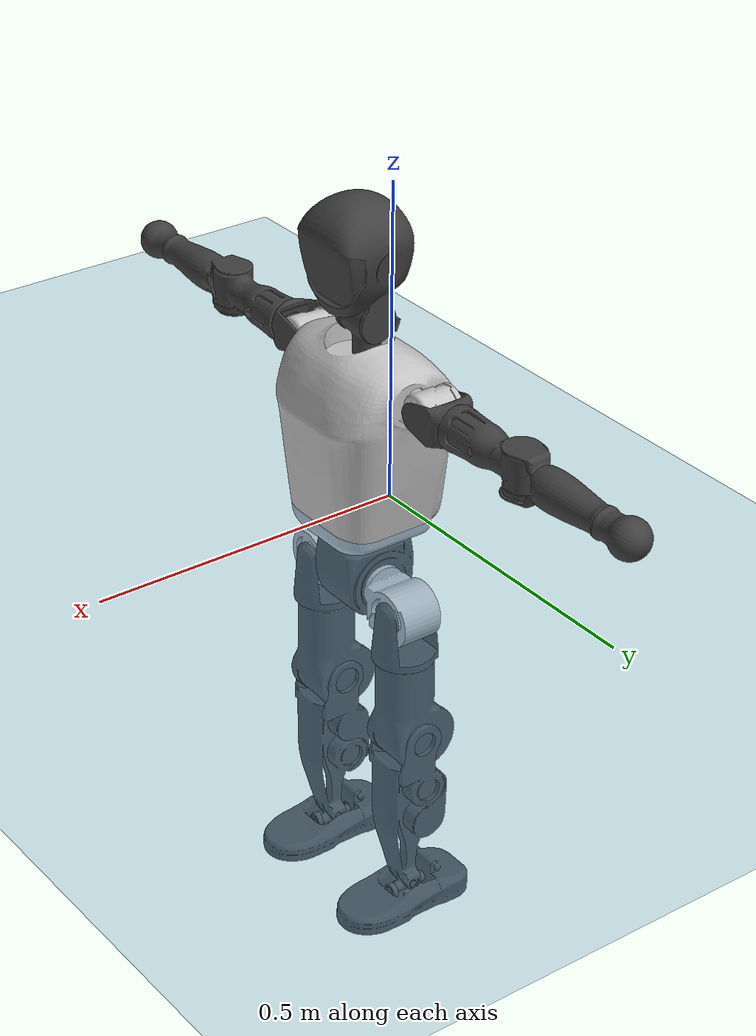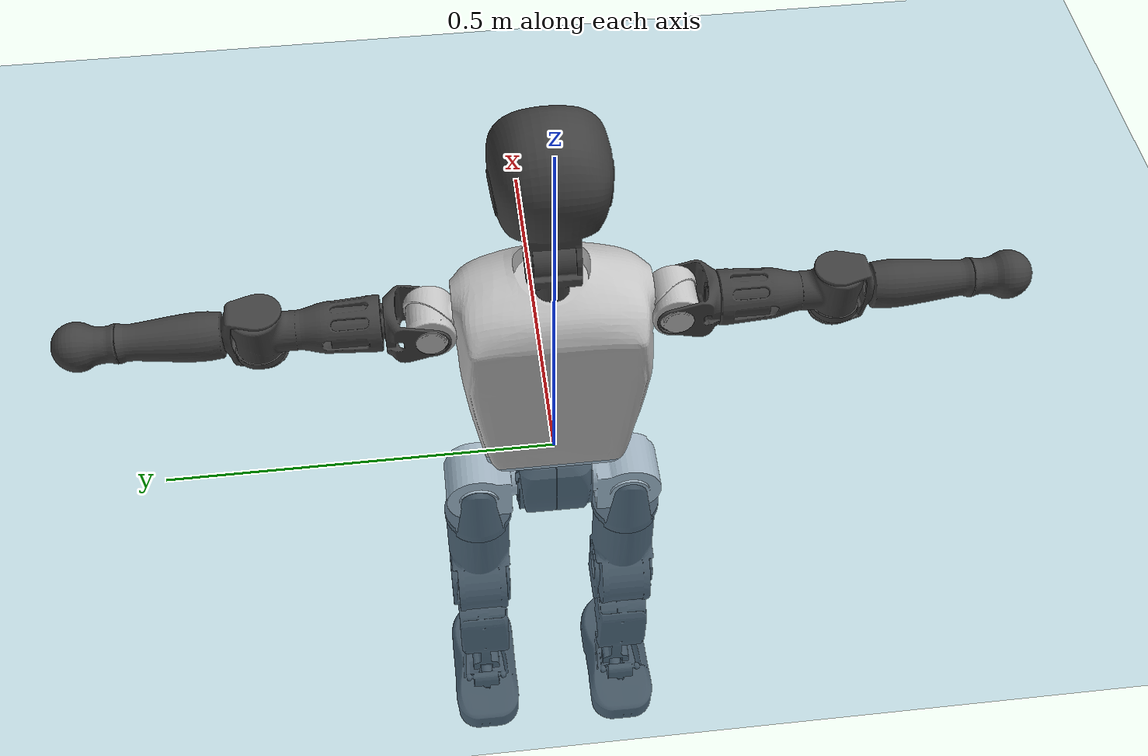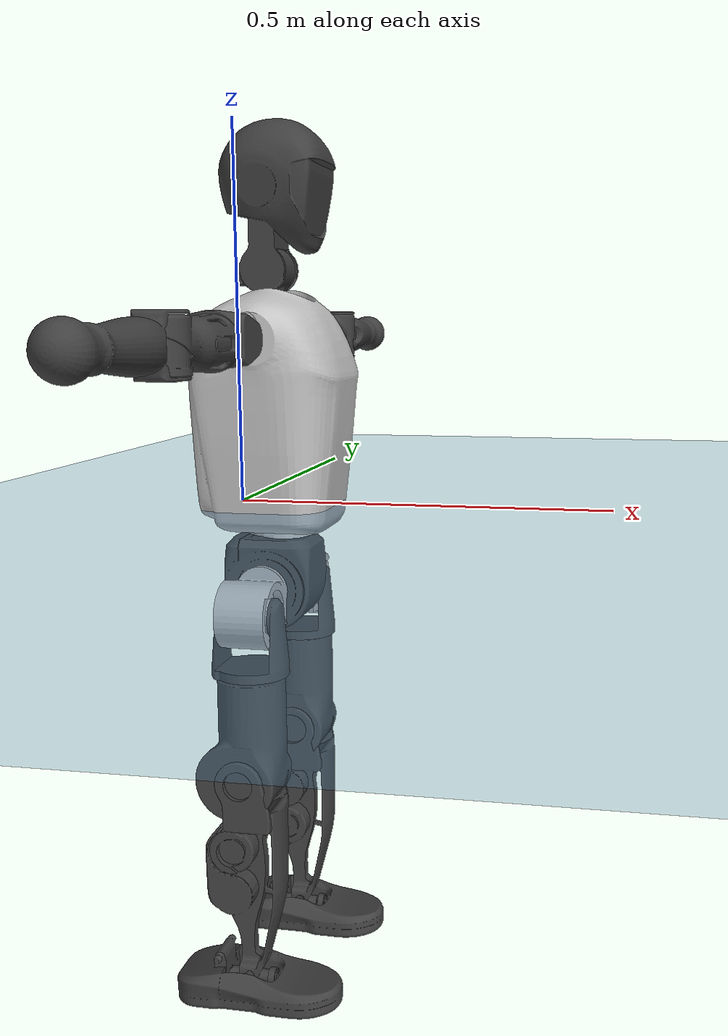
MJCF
<mujoco model="T1">
  <compiler angle="radian" assetdir="assets" balanceinertia="true" inertiafromgeom="false"/>

  <option timestep="0.005" density="1.2" viscosity="2e-05"/>

  <size nkey="1"/>

  <visual>
    <quality shadowsize="8192"/>
    <map shadowclip="0.5"/>
  </visual>

  <default>
    <default class="/">
      <joint armature="0.01" damping="0.01" frictionloss="0.1"/>
      <geom contype="0" conaffinity="0" group="1" solref="-1000 -80"/>
      <site size="0.01 0.005 0.005" group="5"/>
      <general forcelimited="true" biastype="affine" gainprm="25" biasprm="0 -25 -0.6"/>
      <default class="t1">
        <geom rgba="0.25 0.25 0.25 1"/>
        <default class="visual">
          <geom type="mesh" group="2"/>
        </default>
        <default class="collision">
          <geom group="3"/>
        </default>
        <default class="foot">
          <geom size="0.1115 0.05 0.015" type="box" condim="6" group="4" priority="1" solimp="0.015 1 0.015"/>
        </default>
        <default class="reward_collision_sphere">
          <geom group="5" rgba="1 0 0 1"/>
        </default>
      </default>
    </default>
  </default>

  <asset>
    <texture type="skybox" colorspace="auto" name="//unnamed_texture_0" builtin="gradient" rgb1="0.95 0.95 0.95" rgb2="0.95 0.95 0.95" width="100" height="600"/>
    <texture type="2d" colorspace="auto" name="texplane" builtin="checker" rgb1="0.345 0.575 0.748" rgb2="0.345 0.575 0.748" markrgb="1 1 1" width="512" height="512"/>
    <material name="MatPlane" class="/" texture="texplane" texuniform="true" texrepeat="2 2" specular="0.9"/>
    <mesh name="Trunk" class="/" file="Trunk.stl"/>
    <mesh name="H1" class="/" file="H1.stl"/>
    <mesh name="H2" class="/" file="H2.stl"/>
    <mesh name="AL1" class="/" file="AL1.stl"/>
    <mesh name="AL2" class="/" file="AL2.stl"/>
    <mesh name="AL3" class="/" file="AL3.stl"/>
    <mesh name="left_hand_link" class="/" file="left_hand_link.stl"/>
    <mesh name="AR1" class="/" file="AR1.stl"/>
    <mesh name="AR2" class="/" file="AR2.stl"/>
    <mesh name="AR3" class="/" file="AR3.stl"/>
    <mesh name="right_hand_link" class="/" file="right_hand_link.stl"/>
    <mesh name="Waist" class="/" file="Waist.stl"/>
    <mesh name="Hip_Pitch_Left" class="/" file="Hip_Pitch_Left.stl"/>
    <mesh name="Hip_Roll_Left" class="/" file="Hip_Roll_Left.stl"/>
    <mesh name="Hip_Yaw_Left" class="/" file="Hip_Yaw_Left.stl"/>
    <mesh name="Shank_Left" class="/" file="Shank_Left.stl"/>
    <mesh name="Ankle_Cross_Left" class="/" file="Ankle_Cross_Left.stl"/>
    <mesh name="left_foot_link" class="/" file="left_foot_link.stl"/>
    <mesh name="Hip_Pitch_Right" class="/" file="Hip_Pitch_Right.stl"/>
    <mesh name="Hip_Roll_Right" class="/" file="Hip_Roll_Right.stl"/>
    <mesh name="Hip_Yaw_Right" class="/" file="Hip_Yaw_Right.stl"/>
    <mesh name="Shank_Right" class="/" file="Shank_Right.stl"/>
    <mesh name="Ankle_Cross_Right" class="/" file="Ankle_Cross_Right.stl"/>
    <mesh name="right_foot_link" class="/" file="right_foot_link.stl"/>
  </asset>

  <worldbody>
    <geom name="floor" class="/" size="100 100 0.125" type="plane" group="0" material="MatPlane"/>
    <light name="toplight_shadow" class="/" pos="0 0 5" dir="0.0990148 0.0990148 -0.990148" type="directional" ambient="0.04 0.04 0.04" diffuse="0.55 0.55 0.55" specular="0.12 0.12 0.12"/>
    <light name="toplight_fill" class="/" pos="0 0 5" dir="0.0990148 0.0990148 -0.990148" type="directional" castshadow="false" ambient="0.04 0.04 0.04" diffuse="0.3 0.3 0.3" specular="0.08 0.08 0.08"/>
    <body name="trunk" childclass="t1" pos="-0.0021676 -0.00261879 0.00267839" quat="0.999999 -0.000594119 0.00105021 -0.000685947">
      <inertial pos="0.0383483 -0.00244371 0.106646" quat="0.999966 -0.00138918 -0.00817214 -1.08763e-05" mass="8.3245" diaginertia="0.0172876 0.0703773 0.0543042"/>
      <joint name="//unnamed_joint_0" type="free" armature="0" damping="0" frictionloss="0"/>
      <geom name="//unnamed_geom_1" class="visual" rgba="0.76 0.76 0.76 1" mesh="Trunk"/>
      <geom name="//unnamed_geom_2" class="collision" size="0.066952 0.0892693 0.133904" pos="0.04274 0 0.119061" type="box"/>
      <geom name="//unnamed_geom_3" class="reward_collision_sphere" size="0.10266" pos="0.04274 0 0.0992173"/>
      <geom name="//unnamed_geom_4" class="reward_collision_sphere" size="0.0133904" pos="0.04274 0.0827537 0"/>
      <geom name="//unnamed_geom_5" class="reward_collision_sphere" size="0.0133904" pos="0.04274 -0.0827537 0"/>
      <geom name="//unnamed_geom_6" class="reward_collision_sphere" size="0.0133904" pos="0.04274 0.104172 0.178591"/>
      <geom name="//unnamed_geom_7" class="reward_collision_sphere" size="0.0133904" pos="0.04274 -0.104172 0.178591"/>
      <site name="imu" pos="-0.014157 -0.0107235 -0.0038748" size="0.00892693"/>
      <camera name="track" pos="0 -1.94715 0" quat="0.707107 0.707107 0 0" mode="trackcom"/>
      <camera name="ego_camera" pos="0.0869047 0 0.416713" quat="-0.5 -0.5 0.5 0.5"/>
      <body name="H1" pos="0.0452313 0.000590313 0.241867" quat="0.999999 -0.000581247 -0.000872218 0.000691609">
        <inertial pos="0.00130921 -0.00202909 0.059753" quat="0.766174 -0.0111191 0.00434028 0.642522" mass="0.321363" diaginertia="4.43275e-05 0.000203339 0.000139802"/>
        <joint name="AAHead_yaw" pos="0 0 0" axis="0.00889904 -0.00470282 0.999949" range="-1.62768 1.56006" armature="0.010187" damping="0.00748318" frictionloss="0.0766843"/>
        <geom name="//unnamed_geom_8" class="visual" mesh="H1"/>
        <body name="H2" pos="0.00200876 0.00030599 0.0620702" quat="1 -9.70509e-05 0.000460483 2.22251e-05">
          <inertial pos="0.00432159 -0.000449972 0.0973081" quat="0.988477 0.106194 -0.07444 -0.0780662" mass="0.434159" diaginertia="0.000356503 0.00160676 0.00160135"/>
          <joint name="Head_pitch" pos="0 0 0" axis="-0.00639237 -0.999908 0.0119702" range="-1.2141 0.400822" armature="0.00888406" damping="0.0119124" frictionloss="0.0806284"/>
          <geom name="//unnamed_geom_9" class="visual" mesh="H2"/>
          <geom name="//unnamed_geom_10" class="collision" size="0.0714155" pos="0.00712334 0 0.109139"/>
          <geom name="//unnamed_geom_11" class="reward_collision_sphere" size="0.0803424" pos="0.0142467 0 0.0992173"/>
        </body>
      </body>
      <body name="AL1" pos="0.0397223 0.1022 0.217209" quat="1 -3.39424e-05 0.000835813 0.000450798">
        <inertial pos="-0.00118026 0.0444908 -0.00149594" quat="0.503939 0.500927 -0.506375 0.488571" mass="0.378913" diaginertia="0.000254339 0.0011545 0.000284731"/>
        <joint name="Left_Shoulder_Pitch" pos="0 0 0" axis="-0.0107018 0.999932 -0.00453448" stiffness="0.0140632" range="-3.29945 1.17898" armature="0.00854235" damping="0.0134044" frictionloss="0.0861526"/>
        <geom name="//unnamed_geom_12" class="visual" rgba="0.76 0.76 0.76 1" mesh="AL1"/>
        <body name="AL2" pos="0.000699425 0.044177 -0.00264882" quat="1 -0.000138133 -1.2862e-05 -2.16108e-05">
          <inertial pos="0.00107496 0.0359963 -0.000265374" quat="0.489018 0.511688 -0.488207 0.510578" mass="0.112406" diaginertia="7.34774e-05 0.000292923 0.000168044"/>
          <joint name="Left_Shoulder_Roll" pos="0 0 0" axis="-0.999961 0.00307468 0.00833187" stiffness="0.000320007" range="-1.53176 1.71912" armature="0.00791255" damping="0.00273864" frictionloss="0.0985552"/>
          <geom name="//unnamed_geom_13" class="visual" mesh="AL2"/>
          <body name="AL3" pos="0.00331484 0.0601945 0.00170061" quat="1 0.000353791 0.000266028 0.000652024">
            <inertial pos="-0.000543817 0.0805871 -0.00200268" quat="0.711502 0.702587 0.0107911 -0.00440211" mass="0.708434" diaginertia="0.00227473 0.0111493 0.000568613"/>
            <joint name="Left_Elbow_Pitch" pos="0 0 0" axis="-0.0132955 -0.999911 -0.00138351" range="-2.25523 2.24042" armature="0.00983432" damping="0.00121005" frictionloss="0.101505"/>
            <geom name="//unnamed_geom_14" class="visual" mesh="AL3"/>
            <geom name="//unnamed_geom_15" class="collision" size="0.0267808 0.066952" pos="0 0.0486787 0" quat="0.707105 0.707108 0 0" type="cylinder"/>
            <geom name="//unnamed_geom_16" class="reward_collision_sphere" size="0.032137"/>
            <body name="left_hand_link" pos="0.00306051 0.143027 -0.000771347" quat="0.999999 -0.000220016 -0.000871583 -0.00110452">
              <inertial pos="0.0003149 0.106869 -0.00210695" quat="0.709089 0.705109 -0.00262031 -0.00262773" mass="0.240488" diaginertia="0.0015413 0.00714711 0.000207445"/>
              <joint name="Left_Elbow_Yaw" pos="0 0 0" axis="0.00879268 0.0160976 0.999832" stiffness="0.0111228" range="-2.4488 -0.0083811" armature="0.00845199" damping="0.00951308" frictionloss="0.101621"/>
              <geom name="//unnamed_geom_17" class="visual" mesh="left_hand_link"/>
              <geom name="//unnamed_geom_18" class="collision" size="0.0267808 0.0781107" pos="0 0.126565 0" quat="0.707105 0.707108 0 0" type="cylinder"/>
              <geom name="//unnamed_geom_19" class="reward_collision_sphere" size="0.0446347"/>
              <geom name="//unnamed_geom_20" class="reward_collision_sphere" size="0.0312443" pos="0 0.107093 0"/>
              <geom name="//unnamed_geom_21" class="reward_collision_sphere" size="0.0312443" pos="0 0.209318 0"/>
            </body>
          </body>
        </body>
      </body>
      <body name="AR1" pos="0.0396192 -0.100316 0.217702" quat="0.999999 -0.000156219 0.000539538 -0.00117548">
        <inertial pos="-0.00187028 -0.045897 0.00187468" quat="0.504905 0.49303 -0.503932 0.49804" mass="0.377791" diaginertia="0.000243147 0.00114528 0.000292104"/>
        <joint name="Right_Shoulder_Pitch" pos="0 0 0" axis="0.00145286 -0.999998 -0.00166302" stiffness="0.00470144" range="-1.24821 3.31377" armature="0.00766165" damping="0.0144143" frictionloss="0.0903282"/>
        <geom name="//unnamed_geom_22" class="visual" rgba="0.76 0.76 0.76 1" mesh="AR1"/>
        <body name="AR2" pos="-5.47948e-05 -0.0423352 -0.00109658" quat="1 0.000197651 -1.59081e-05 -2.29216e-05">
          <inertial pos="0.00222567 -0.0370133 -0.00154034" quat="0.514173 0.498025 -0.506226 0.480971" mass="0.119127" diaginertia="7.18685e-05 0.000299552 0.000166933"/>
          <joint name="Right_Shoulder_Roll" pos="0 0 0" axis="-0.999999 0.000396447 -0.00166882" stiffness="0.0060058" range="-1.76238 1.61484" armature="0.00888197" damping="0" frictionloss="0.0897264"/>
          <geom name="//unnamed_geom_23" class="visual" mesh="AR2"/>
          <body name="AR3" pos="0.00250929 -0.0582224 -0.00363476" quat="1 0.000358871 -0.000243827 -0.000239887">
            <inertial pos="0.00149749 -0.0858358 0.00046541" quat="0.706378 0.707833 0.00076352 -0.00114127" mass="0.731262" diaginertia="0.00239446 0.0118331 0.000630437"/>
            <joint name="Right_Elbow_Pitch" pos="0 0 0" axis="0.00315434 0.999961 -0.00821214" range="-2.28053 2.26546" armature="0.00974238" damping="0.00890524" frictionloss="0.0803024"/>
            <geom name="//unnamed_geom_24" class="visual" mesh="AR3"/>
            <geom name="//unnamed_geom_25" class="collision" size="0.0267808 0.066952" pos="0 -0.0486787 0" quat="0.707105 0.707108 0 0" type="cylinder"/>
            <geom name="//unnamed_geom_26" class="reward_collision_sphere" size="0.032137"/>
            <body name="right_hand_link" pos="-0.000709299 -0.143994 0.000506098" quat="0.999999 0.000815379 0.00104199 -0.000465162">
              <inertial pos="-0.000897191 -0.105354 -0.000575854" quat="0.70242 0.711751 -0.00393855 -0.000575544" mass="0.235097" diaginertia="0.00146324 0.00712061 0.000214546"/>
              <joint name="Right_Elbow_Yaw" pos="0 0 0" axis="0.0081074 -0.00516967 0.999954" range="-0.0393453 2.46533" armature="0.00888944" damping="0" frictionloss="0.0940239"/>
              <geom name="//unnamed_geom_27" class="visual" mesh="right_hand_link"/>
              <geom name="//unnamed_geom_28" class="collision" size="0.0267808 0.0781107" pos="0 -0.126565 0" quat="0.707105 0.707108 0 0" type="cylinder"/>
              <geom name="//unnamed_geom_29" class="reward_collision_sphere" size="0.0446347"/>
              <geom name="//unnamed_geom_30" class="reward_collision_sphere" size="0.0312443" pos="0 -0.107093 0"/>
              <geom name="//unnamed_geom_31" class="reward_collision_sphere" size="0.0312443" pos="0 -0.209318 0"/>
            </body>
          </body>
        </body>
      </body>
      <body name="Waist" pos="0.0480548 0.000782017 -0.114804" quat="0.999999 0.000874858 -0.000388102 -0.000425126">
        <inertial pos="0.00178852 -0.000976882 0.010008" quat="0.98312 0.0102224 -0.182581 -0.00590585" mass="1.77344" diaginertia="0.000953585 0.00470022 0.00453547"/>
        <joint name="Waist" pos="0 0 0" axis="0.00243463 -0.013078 0.999912" stiffness="0.00121781" range="-1.57598 1.59059" armature="0.00979765" damping="0.0197484" frictionloss="0.0784055"/>
        <geom name="//unnamed_geom_32" class="visual" mesh="Waist"/>
        <body name="Hip_Pitch_Left" pos="0.00359708 0.104587 -0.00236043" quat="0.999999 -0.000373596 0.000637262 -0.00094601">
          <inertial pos="0.00187742 -0.00486733 -0.0201129" quat="0.973961 0.225964 0.0175958 0.00551481" mass="0.750694" diaginertia="0.000326477 0.00127471 0.0012335"/>
          <joint name="Left_Hip_Pitch" pos="0 0 0" axis="0.0155426 0.999874 -0.00334996" stiffness="0.00426432" range="-1.81071 1.6125" armature="0.00942127" damping="0.00194646" frictionloss="0.0902763"/>
          <geom name="//unnamed_geom_33" class="visual" rgba="0.76 0.76 0.76 1" mesh="Hip_Pitch_Left"/>
          <body name="Hip_Roll_Left" pos="0.00114787 0.000698934 -0.0183026" quat="1 0.000411636 0.000261104 4.20455e-05">
            <inertial pos="-0.00182316 0.00253135 -0.0531297" quat="0.701217 -0.0103444 -0.0166208 0.712679" mass="0.276503" diaginertia="0.000322729 0.00127345 0.000490755"/>
            <joint name="Left_Hip_Roll" pos="0 0 0" axis="-0.999965 -0.00835396 0.000544227" range="-1.56249 0.248992" armature="0.00839041" damping="0.0117272" frictionloss="0.0767121"/>
            <geom name="//unnamed_geom_34" class="visual" mesh="Hip_Roll_Left"/>
            <geom name="//unnamed_geom_35" class="reward_collision_sphere" size="0.0490981"/>
            <body name="Hip_Yaw_Left" pos="-0.00156908 0.00192853 -0.0792728" quat="1 0.000353348 -0.000197259 -0.000102227">
              <inertial pos="-0.00555855 -0.000660705 -0.0880268" quat="0.692213 -0.0390494 -0.0321996 0.719917" mass="1.44232" diaginertia="0.00457463 0.0213313 0.00235691"/>
              <joint name="Left_Hip_Yaw" pos="0 0 0" axis="-0.0085762 0.00445326 -0.999953" range="-0.954103 0.953342" armature="0.00929834" damping="0.0161682" frictionloss="0.0881936"/>
              <geom name="//unnamed_geom_36" class="visual" mesh="Hip_Yaw_Left"/>
              <geom name="//unnamed_geom_37" class="collision" size="0.0446347 0.0714155" type="cylinder"/>
              <body name="Shank_Left" pos="-0.005806 0.00148545 -0.135798" quat="1 -0.000203641 0.000616977 -0.00024812">
                <inertial pos="-0.00407268 -0.00126412 -0.123127" quat="0.997588 -0.000446105 -0.0267786 0.0640415" mass="1.2451" diaginertia="0.00652876 0.0302 0.00183593"/>
                <joint name="Left_Knee_Pitch" pos="0 0 0" axis="0.001283 0.999999 -0.00104376" stiffness="0.00258481" range="0.0513786 2.33387" armature="0.00963089" damping="0.0248692" frictionloss="0.0917742"/>
                <geom name="//unnamed_geom_38" class="visual" mesh="Shank_Left"/>
                <geom name="//unnamed_geom_39" class="collision" size="0.0446347 0.066952" pos="0 0 -0.119061" type="cylinder"/>
                <geom name="//unnamed_geom_40" class="reward_collision_sphere" size="0.0580251"/>
                <body name="Ankle_Cross_Left" pos="0.00181117 -9.19991e-05 -0.280785" quat="1 3.08765e-05 0.000137172 -0.00022785">
                  <inertial pos="-0.00160078 0.000818141 -0.00516602" quat="0.442495 0.551577 0.550835 0.443332" mass="0.0496316" diaginertia="5.44554e-06 2.18915e-05 1.09114e-05"/>
                  <joint name="Left_Ankle_Pitch" pos="0 0 0" axis="0.00713369 0.999964 0.0046904" range="-0.908601 0.33516" armature="0.00910888" damping="0.00999622" frictionloss="0.0781098"/>
                  <geom name="//unnamed_geom_41" class="visual" mesh="Ankle_Cross_Left"/>
                  <body name="left_foot_link" pos="0.00113389 0.00238522 -0.0118208" quat="1 -0.000408568 -1.62589e-05 -0.000533665">
                    <inertial pos="0.00186594 -0.000341164 -0.0110686" quat="-0.00429716 0.618019 -0.0116265 0.786065" mass="0.508853" diaginertia="0.000513375 0.00214496 0.00209454"/>
                    <joint name="Left_Ankle_Roll" pos="0 0 0" axis="-0.999975 0.00200412 0.00675884" range="-0.449606 0.386971" armature="0.00887483" damping="0" frictionloss="0.0977221"/>
                    <geom name="//unnamed_geom_42" class="visual" mesh="left_foot_link"/>
                    <geom name="left_foot" class="foot" size="0.109489 0.0401682 0.013011" pos="0.00712334 0 -0.0148826"/>
                    <geom name="//unnamed_geom_44" class="reward_collision_sphere" size="0.0464201" pos="0.00712334 0 -0.0148826"/>
                    <geom name="//unnamed_geom_45" class="reward_collision_sphere" size="0.0267808" pos="0.0676717 -0.0223922 -0.0148826"/>
                    <geom name="//unnamed_geom_46" class="reward_collision_sphere" size="0.0267808" pos="-0.0498634 -0.0223922 -0.0148826"/>
                    <site name="left_foot" class="foot" pos="0.00712334 0 -0.0148826" size="0.00892693"/>
                  </body>
                </body>
              </body>
            </body>
          </body>
        </body>
        <body name="Hip_Pitch_Right" pos="-0.0032026 -0.104102 -0.000644782" quat="0.999999 0.000542971 0.00106329 -0.00118917">
          <inertial pos="-0.00245504 0.0061755 -0.015225" quat="0.972589 -0.232164 0.0117733 -0.00565735" mass="0.737024" diaginertia="0.000339314 0.00132545 0.00124576"/>
          <joint name="Right_Hip_Pitch" pos="0 0 0" axis="0.00587379 -0.999983 0.000293227" range="-1.57148 1.82503" armature="0.00941242" damping="0" frictionloss="0.101757"/>
          <geom name="//unnamed_geom_47" class="visual" rgba="0.76 0.76 0.76 1" mesh="Hip_Pitch_Right"/>
          <body name="Hip_Roll_Right" pos="0.00206012 -0.000561643 -0.0220867" quat="1 -1.34026e-05 -0.000250698 -6.44878e-05">
            <inertial pos="-0.00135322 -0.00293949 -0.0558973" quat="0.702586 1.84488e-05 0.00378283 0.711589" mass="0.28452" diaginertia="0.000318744 0.00134034 0.00048633"/>
            <joint name="Right_Hip_Roll" pos="0 0 0" axis="-0.999998 -0.00102552 -0.0018986" range="-0.256726 1.57256" armature="0.0102216" damping="0.0101204" frictionloss="0.0774321"/>
            <geom name="//unnamed_geom_48" class="visual" mesh="Hip_Roll_Right"/>
            <geom name="//unnamed_geom_49" class="reward_collision_sphere" size="0.0490981"/>
            <body name="Hip_Yaw_Right" pos="-0.00231189 0.000822681 -0.0821197" quat="1 -0.000104037 0.000149102 -0.000144916">
              <inertial pos="-0.00459808 -0.00265186 -0.0871096" quat="0.714555 -0.0316398 -0.0335264 0.698059" mass="1.57865" diaginertia="0.00467457 0.0233657 0.00247969"/>
              <joint name="Right_Hip_Yaw" pos="0 0 0" axis="-0.00295845 -0.00584476 -0.999979" stiffness="0.00445793" range="-0.991529 1.01371" armature="0.00834223" damping="0" frictionloss="0.0893785"/>
              <geom name="//unnamed_geom_50" class="visual" mesh="Hip_Yaw_Right"/>
              <geom name="//unnamed_geom_51" class="collision" size="0.0446347 0.0714155" type="cylinder"/>
              <body name="Shank_Right" pos="-0.00822342 0.000442032 -0.135448" quat="1 -0.000103664 -5.53475e-05 -0.000130657">
                <inertial pos="-0.00277982 0.000363993 -0.120058" quat="0.998689 0.000489853 -0.0260896 -0.0440335" mass="1.29298" diaginertia="0.0066057 0.0303472 0.00185539"/>
                <joint name="Right_Knee_Pitch" pos="0 0 0" axis="0.00182921 -0.999998 -0.000326642" range="-2.337 0.00592087" armature="0.00935613" damping="0.012166" frictionloss="0.100491"/>
                <geom name="//unnamed_geom_52" class="visual" mesh="Shank_Right"/>
                <geom name="//unnamed_geom_53" class="collision" size="0.0446347 0.066952" pos="0 0 -0.119061" type="cylinder"/>
                <geom name="//unnamed_geom_54" class="reward_collision_sphere" size="0.0580251"/>
                <body name="Ankle_Cross_Right" pos="0.00319579 0.00102958 -0.278324" quat="1 0.000273821 9.32471e-05 -0.000438882">
                  <inertial pos="-0.00105339 0.00285708 -0.00846058" quat="0.436649 0.551034 0.560796 0.437272" mass="0.0502503" diaginertia="5.51172e-06 2.25685e-05 1.05432e-05"/>
                  <joint name="Right_Ankle_Pitch" pos="0 0 0" axis="0.00477327 -0.999988 0.00126377" range="-0.384766 0.853837" armature="0.00915875" damping="0.0100424" frictionloss="0.0952301"/>
                  <geom name="//unnamed_geom_55" class="visual" mesh="Ankle_Cross_Right"/>
                  <body name="right_foot_link" pos="-0.000320067 -0.00361323 -0.00915709" quat="1 0.000204578 0.00020289 0.000287072">
                    <inertial pos="0.00133706 -0.000266751 -0.00620451" quat="0.00868315 0.622846 0.0100885 0.782231" mass="0.479782" diaginertia="0.000498623 0.00210774 0.00203019"/>
                    <joint name="Right_Ankle_Roll" pos="0 0 0" axis="-0.999915 0.00680871 -0.0110973" range="-0.442629 0.40113" armature="0.00980949" damping="0.0130382" frictionloss="0.0812343"/>
                    <geom name="//unnamed_geom_56" class="visual" mesh="right_foot_link"/>
                    <geom name="right_foot" class="foot" size="0.103727 0.0394034 0.0120437" pos="0.00712334 0 -0.0148826"/>
                    <geom name="//unnamed_geom_58" class="reward_collision_sphere" size="0.0357077"/>
                    <geom name="//unnamed_geom_59" class="reward_collision_sphere" size="0.0267808" pos="0.00712334 0 -0.0148826"/>
                    <geom name="//unnamed_geom_60" class="reward_collision_sphere" size="0.0267808" pos="0.0676717 0.0223922 -0.0148826"/>
                    <geom name="//unnamed_geom_61" class="reward_collision_sphere" size="0.0267808" pos="-0.0498634 0.0223922 -0.0148826"/>
                    <site name="right_foot" class="foot" pos="0.00712334 0 -0.0148826" size="0.00892693"/>
                  </body>
                </body>
              </body>
            </body>
          </body>
        </body>
      </body>
    </body>
  </worldbody>

  <contact>
    <pair class="/" geom1="floor" geom2="left_foot" name="//unnamed_contact_0"/>
    <pair class="/" geom1="floor" geom2="right_foot" name="//unnamed_contact_1"/>
  </contact>

  <actuator>
    <general name="AAHead_yaw" class="/" joint="AAHead_yaw" forcerange="-5.72853 5.72853" gainprm="21.763" biasprm="0 -21.763 -0.519793"/>
    <general name="Head_pitch" class="/" joint="Head_pitch" forcerange="-6.69387 6.69387" gainprm="21.763" biasprm="0 -21.763 -0.519793"/>
    <general name="Left_Shoulder_Pitch" class="/" joint="Left_Shoulder_Pitch" forcerange="-15.8633 15.8633" gainprm="21.763" biasprm="0 -21.763 -0.519793"/>
    <general name="Left_Shoulder_Roll" class="/" joint="Left_Shoulder_Roll" forcerange="-17.1223 17.1223" gainprm="21.763" biasprm="0 -21.763 -0.519793"/>
    <general name="Left_Elbow_Pitch" class="/" joint="Left_Elbow_Pitch" forcerange="-17.7259 17.7259" gainprm="21.763" biasprm="0 -21.763 -0.519793"/>
    <general name="Left_Elbow_Yaw" class="/" joint="Left_Elbow_Yaw" forcerange="-16.837 16.837" gainprm="21.763" biasprm="0 -21.763 -0.519793"/>
    <general name="Right_Shoulder_Pitch" class="/" joint="Right_Shoulder_Pitch" forcerange="-16.2909 16.2909" gainprm="21.763" biasprm="0 -21.763 -0.519793"/>
    <general name="Right_Shoulder_Roll" class="/" joint="Right_Shoulder_Roll" forcerange="-17.7 17.7" gainprm="21.763" biasprm="0 -21.763 -0.519793"/>
    <general name="Right_Elbow_Pitch" class="/" joint="Right_Elbow_Pitch" forcerange="-17.8003 17.8003" gainprm="21.763" biasprm="0 -21.763 -0.519793"/>
    <general name="Right_Elbow_Yaw" class="/" joint="Right_Elbow_Yaw" forcerange="-14.3557 14.3557" gainprm="21.763" biasprm="0 -21.763 -0.519793"/>
    <general name="Waist" class="/" joint="Waist" forcerange="-26.8812 26.8812" gainprm="21.763" biasprm="0 -21.763 -0.519793"/>
    <general name="Left_Hip_Pitch" class="/" joint="Left_Hip_Pitch" forcerange="-44.2861 44.2861" gainprm="21.763" biasprm="0 -21.763 -0.519793"/>
    <general name="Left_Hip_Roll" class="/" joint="Left_Hip_Roll" forcerange="-27.4241 27.4241" gainprm="21.763" biasprm="0 -21.763 -0.519793"/>
    <general name="Left_Hip_Yaw" class="/" joint="Left_Hip_Yaw" forcerange="-28.3258 28.3258" gainprm="21.763" biasprm="0 -21.763 -0.519793"/>
    <general name="Left_Knee_Pitch" class="/" joint="Left_Knee_Pitch" forcerange="-53.3307 53.3307" gainprm="21.763" biasprm="0 -21.763 -0.519793"/>
    <general name="Left_Ankle_Pitch" class="/" joint="Left_Ankle_Pitch" forcerange="-18.4853 18.4853" gainprm="21.763" biasprm="0 -21.763 -0.519793"/>
    <general name="Left_Ankle_Roll" class="/" joint="Left_Ankle_Roll" forcerange="-13.4622 13.4622" gainprm="21.763" biasprm="0 -21.763 -0.519793"/>
    <general name="Right_Hip_Pitch" class="/" joint="Right_Hip_Pitch" forcerange="-41.7761 41.7761" gainprm="21.763" biasprm="0 -21.763 -0.519793"/>
    <general name="Right_Hip_Roll" class="/" joint="Right_Hip_Roll" forcerange="-26.8941 26.8941" gainprm="21.763" biasprm="0 -21.763 -0.519793"/>
    <general name="Right_Hip_Yaw" class="/" joint="Right_Hip_Yaw" forcerange="-25.8717 25.8717" gainprm="21.763" biasprm="0 -21.763 -0.519793"/>
    <general name="Right_Knee_Pitch" class="/" joint="Right_Knee_Pitch" forcerange="-48.2386 48.2386" gainprm="21.763" biasprm="0 -21.763 -0.519793"/>
    <general name="Right_Ankle_Pitch" class="/" joint="Right_Ankle_Pitch" forcerange="-16.0649 16.0649" gainprm="21.763" biasprm="0 -21.763 -0.519793"/>
    <general name="Right_Ankle_Roll" class="/" joint="Right_Ankle_Roll" forcerange="-14.805 14.805" gainprm="21.763" biasprm="0 -21.763 -0.519793"/>
  </actuator>

  <sensor>
    <gyro site="imu" name="imu_angular_velocity"/>
    <velocimeter site="imu" name="imu_linear_velocity"/>
    <framelinvel objtype="site" objname="left_foot" name="left_foot_global_linear_velocity"/>
    <framelinvel objtype="site" objname="right_foot" name="right_foot_global_linear_velocity"/>
  </sensor>

  <keyframe>
    <key name="home" qpos="0 0 0.6385 1 0 0 0 0 0 0 1.4 0 -0.4 0 -1.4 0 0.4 0 -0.4 0 0 0.8 -0.4 0 0.4 0 0 -0.8 0.4 0"/>
  </keyframe>
</mujoco>
